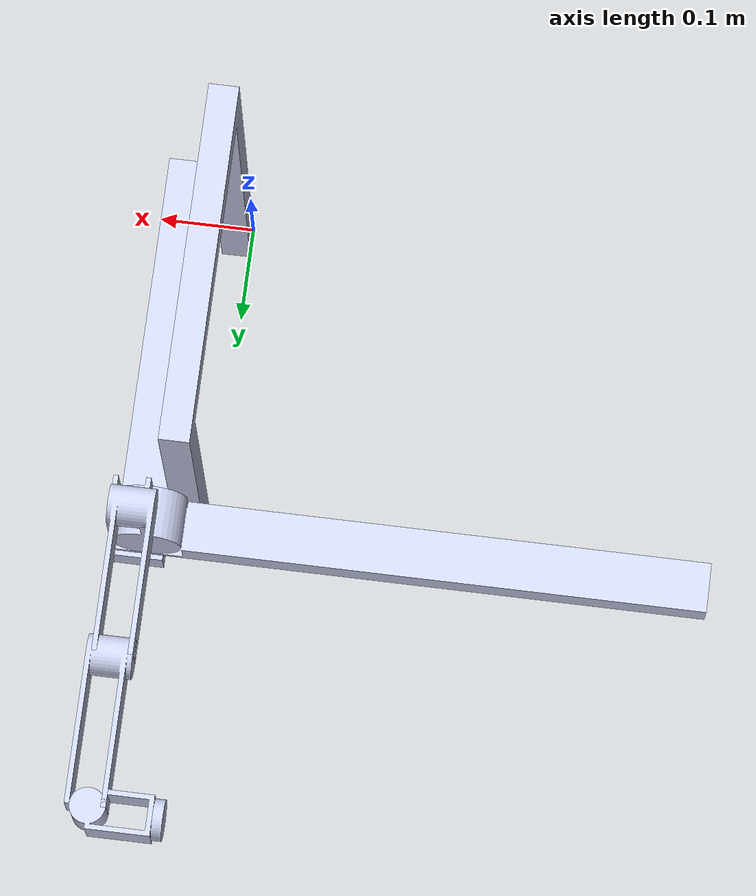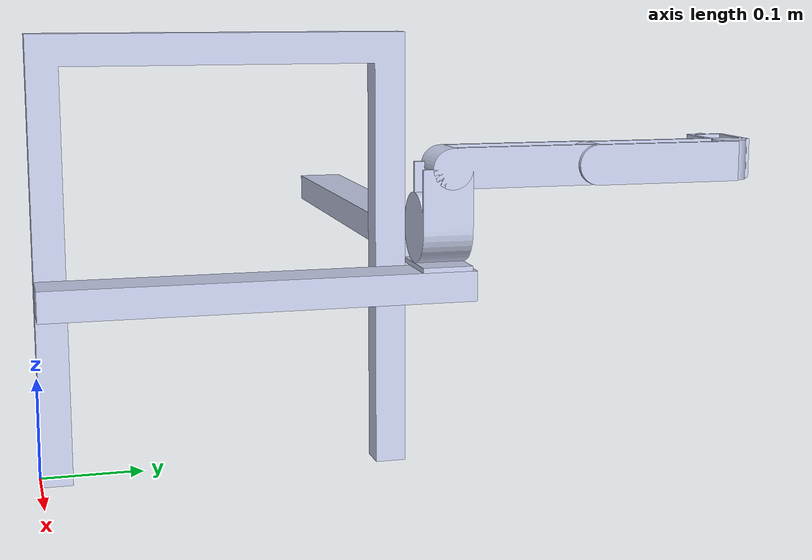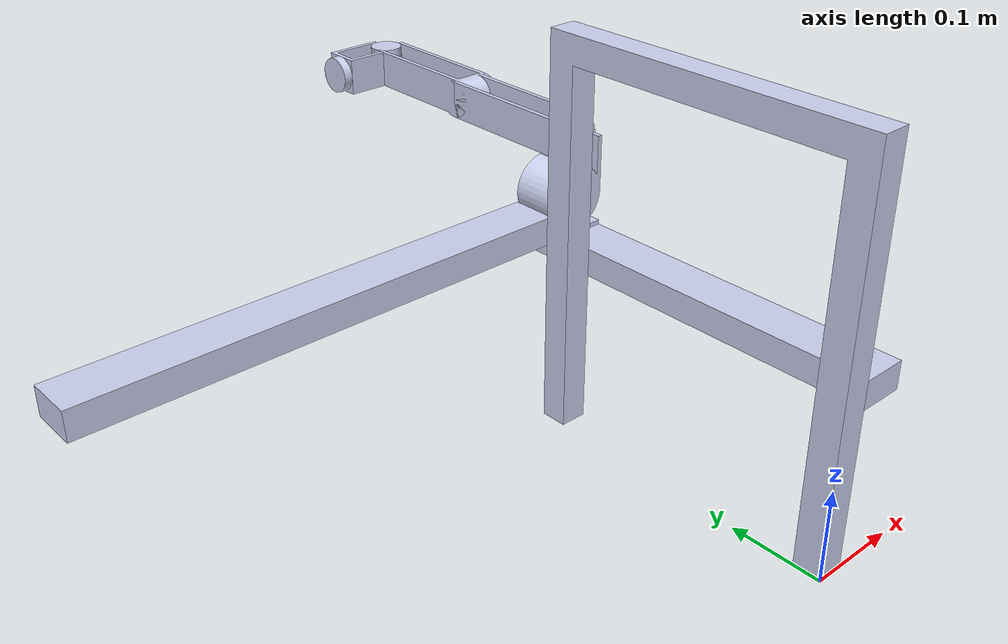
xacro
<?xml version="1.0"?>
<robot xmlns:xacro="http://www.ros.org/wiki/xacro" name="arm_0">
    <xacro:arg name="initial_positions_file" default="initial_positions.yaml" />

    <!-- Import arm_0 urdf file -->
    <xacro:include filename="$(find arm_0)/urdf/arm_0.urdf" />

    <!-- Import control_xacro -->
    <xacro:include filename="arm_0.ros2_control.xacro" />

    <xacro:arm_0_ros2_control name="FakeSystem" initial_positions_file="$(arg initial_positions_file)"/>

</robot>

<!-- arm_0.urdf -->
<robot
  name="arm_0">
  <link
    name="base_link">
    <inertial>
      <origin
        xyz="0.0150000000000001 0.18 0.266724137931034"
        rpy="0 0 0" />
      <mass
        value="1.044" />
      <inertia
        ixx="0.0131775"
        ixy="1.22548196841864E-20"
        ixz="3.6859680981316E-20"
        iyy="0.00970260000000001"
        iyz="-3.3156353969972E-17"
        izz="0.0036315" />
    </inertial>
    <visual>
      <origin
        xyz="0 0 0"
        rpy="0 0 0" />
      <geometry>
        <mesh
          filename="package://arm_0/meshes/base_link.STL" />
      </geometry>
      <material
        name="">
        <color
          rgba="0.792156862745098 0.819607843137255 0.933333333333333 1" />
      </material>
    </visual>
    <collision>
      <origin
        xyz="0 0 0"
        rpy="0 0 0" />
      <geometry>
        <mesh
          filename="package://arm_0/meshes/base_link.STL" />
      </geometry>
    </collision>
  </link>
  <link
    name="link1">
    <inertial>
      <origin
        xyz="-0.21 0.025 -0.0150000000000001"
        rpy="0 0 0" />
      <mass
        value="0.629999999999999" />
      <inertia
        ixx="0.0001785"
        ixy="1.21917699152479E-19"
        ixz="9.89491718219124E-20"
        iyy="0.00930824999999999"
        iyz="2.89515131245302E-19"
        izz="0.00939224999999999" />
    </inertial>
    <visual>
      <origin
        xyz="0 0 0"
        rpy="0 0 0" />
      <geometry>
        <mesh
          filename="package://arm_0/meshes/link1.STL" />
      </geometry>
      <material
        name="">
        <color
          rgba="0.792156862745098 0.819607843137255 0.933333333333333 1" />
      </material>
    </visual>
    <collision>
      <origin
        xyz="0 0 0"
        rpy="0 0 0" />
      <geometry>
        <mesh
          filename="package://arm_0/meshes/link1.STL" />
      </geometry>
    </collision>
  </link>
  <joint
    name="joint1"
    type="prismatic">
    <origin
      xyz="0.03 0 0.2"
      rpy="0 0 -1.5708" />
    <parent
      link="base_link" />
    <child
      link="link1" />
    <axis
      xyz="0 0 1" />
    <limit
      lower="0"
      upper="0.2"
      effort="0"
      velocity="0.2" />
  </joint>
  <link
    name="link2">
    <inertial>
      <origin
        xyz="0.0250000000000001 0.00972570532918204 -0.323526645768025"
        rpy="0 0 0" />
      <mass
        value="0.797500000000001" />
      <inertia
        ixx="0.0176416822916667"
        ixy="-1.24576770735757E-20"
        ixz="-4.23071074943213E-19"
        iyy="0.0177492916666667"
        iyz="1.2971848518932E-19"
        izz="0.000224682291666667" />
    </inertial>
    <visual>
      <origin
        xyz="0 0 0"
        rpy="0 0 0" />
      <geometry>
        <mesh
          filename="package://arm_0/meshes/link2.STL" />
      </geometry>
      <material
        name="">
        <color
          rgba="0.792156862745098 0.819607843137255 0.933333333333333 1" />
      </material>
    </visual>
    <collision>
      <origin
        xyz="0 0 0"
        rpy="0 0 0" />
      <geometry>
        <mesh
          filename="package://arm_0/meshes/link2.STL" />
      </geometry>
    </collision>
  </link>
  <joint
    name="joint2"
    type="prismatic">
    <origin
      xyz="-0.365 0.05 0.005"
      rpy="1.5708 0 -3.1416" />
    <parent
      link="link1" />
    <child
      link="link2" />
    <axis
      xyz="0 0 1" />
    <limit
      lower="0"
      upper="0.52"
      effort="0"
      velocity="0.2" />
  </joint>
  <link
    name="link3">
    <inertial>
      <origin
        xyz="-0.00383859208759457 -0.00226825896085331 0.0250000000000002"
        rpy="0 0 0" />
      <mass
        value="0.214922550032375" />
      <inertia
        ixx="0.00010375181220416"
        ixy="1.6447173030815E-20"
        ixz="1.55447019113076E-21"
        iyy="0.00010876743720416"
        iyz="-1.56795527780169E-20"
        izz="0.00012296818689483" />
    </inertial>
    <visual>
      <origin
        xyz="0 0 0"
        rpy="0 0 0" />
      <geometry>
        <mesh
          filename="package://arm_0/meshes/link3.STL" />
      </geometry>
      <material
        name="">
        <color
          rgba="0.792156862745098 0.819607843137255 0.933333333333333 1" />
      </material>
    </visual>
    <collision>
      <origin
        xyz="0 0 0"
        rpy="0 0 0" />
      <geometry>
        <mesh
          filename="package://arm_0/meshes/link3.STL" />
      </geometry>
    </collision>
  </link>
  <joint
    name="joint3"
    type="revolute">
    <origin
      xyz="0.00018539 0.035 -0.035"
      rpy="-1.5708 0 -1.5708" />
    <parent
      link="link2" />
    <child
      link="link3" />
    <axis
      xyz="0 0 -1" />
    <limit
      lower="0"
      upper="1.5708"
      effort="0"
      velocity="1.5708" />
  </joint>
  <link
    name="link4">
    <inertial>
      <origin
        xyz="0.0386104799506439 -3.88578058618805E-16 0.0237870159983397"
        rpy="0 0 0" />
      <mass
        value="0.116548667764616" />
      <inertia
        ixx="2.33224544617406E-05"
        ixy="-1.45109664472784E-21"
        ixz="1.09489071317013E-22"
        iyy="0.000127822454461741"
        iyz="1.49113949445848E-20"
        izz="0.000131809733552923" />
    </inertial>
    <visual>
      <origin
        xyz="0 0 0"
        rpy="0 0 0" />
      <geometry>
        <mesh
          filename="package://arm_0/meshes/link4.STL" />
      </geometry>
      <material
        name="">
        <color
          rgba="0.792156862745098 0.819607843137255 0.933333333333333 1" />
      </material>
    </visual>
    <collision>
      <origin
        xyz="0 0 0"
        rpy="0 0 0" />
      <geometry>
        <mesh
          filename="package://arm_0/meshes/link4.STL" />
      </geometry>
    </collision>
  </link>
  <joint
    name="joint4"
    type="revolute">
    <origin
      xyz="-0.06 -0.035 0.029815"
      rpy="-1.5708 -1.5708 0" />
    <parent
      link="link3" />
    <child
      link="link4" />
    <axis
      xyz="0 0 -1" />
    <limit
      lower="0"
      upper="3.1416"
      effort="0"
      velocity="1.5708" />
  </joint>
  <link
    name="link5">
    <inertial>
      <origin
        xyz="0.0386104799506441 -9.43689570931383E-16 0.021212984001646"
        rpy="0 0 0" />
      <mass
        value="0.116548667764616" />
      <inertia
        ixx="2.33224544617406E-05"
        ixy="2.54545996277801E-21"
        ixz="5.20103575419095E-22"
        iyy="0.00012782245446174"
        iyz="3.12321566304693E-20"
        izz="0.000131809733552923" />
    </inertial>
    <visual>
      <origin
        xyz="0 0 0"
        rpy="0 0 0" />
      <geometry>
        <mesh
          filename="package://arm_0/meshes/link5.STL" />
      </geometry>
      <material
        name="">
        <color
          rgba="0.792156862745098 0.819607843137255 0.933333333333333 1" />
      </material>
    </visual>
    <collision>
      <origin
        xyz="0 0 0"
        rpy="0 0 0" />
      <geometry>
        <mesh
          filename="package://arm_0/meshes/link5.STL" />
      </geometry>
    </collision>
  </link>
  <joint
    name="joint5"
    type="revolute">
    <origin
      xyz="0.15 0 0"
      rpy="0 0 0" />
    <parent
      link="link4" />
    <child
      link="link5" />
    <axis
      xyz="0 0 -1" />
    <limit
      lower="-2.7489"
      upper="2.7489"
      effort="0"
      velocity="2.3562" />
  </joint>
  <link
    name="link6">
    <inertial>
      <origin
        xyz="0.00210575365579668 0.0171468511972045 -0.0199999999999989"
        rpy="0 0 0" />
      <mass
        value="0.066484510006475" />
      <inertia
        ixx="1.64944049649007E-05"
        ixy="1.30230186917681E-20"
        ixz="4.75098114879039E-21"
        iyy="1.29194049649007E-05"
        iyz="2.84221956348369E-20"
        izz="1.16846072614081E-05" />
    </inertial>
    <visual>
      <origin
        xyz="0 0 0"
        rpy="0 0 0" />
      <geometry>
        <mesh
          filename="package://arm_0/meshes/link6.STL" />
      </geometry>
      <material
        name="">
        <color
          rgba="0.792156862745098 0.819607843137255 0.933333333333333 1" />
      </material>
    </visual>
    <collision>
      <origin
        xyz="0 0 0"
        rpy="0 0 0" />
      <geometry>
        <mesh
          filename="package://arm_0/meshes/link6.STL" />
      </geometry>
    </collision>
  </link>
  <joint
    name="joint6"
    type="revolute">
    <origin
      xyz="0.15 -0.02 0.0225"
      rpy="1.5708 0 0" />
    <parent
      link="link5" />
    <child
      link="link6" />
    <axis
      xyz="0 0 -1" />
    <limit
      lower="0"
      upper="1.5708"
      effort="0"
      velocity="1.5708" />
  </joint>
  <link
    name="link7">
    <inertial>
      <origin
        xyz="0 0 -0.005"
        rpy="0 0 0" />
      <mass
        value="0.0125663706143592" />
      <inertia
        ixx="1.36135681655558E-06"
        ixy="1.29779041798047E-37"
        ixz="-2.29588740395048E-39"
        iyy="1.36135681655558E-06"
        iyz="1.29410607315755E-22"
        izz="2.51327412287184E-06" />
    </inertial>
    <visual>
      <origin
        xyz="0 0 0"
        rpy="0 0 0" />
      <geometry>
        <mesh
          filename="package://arm_0/meshes/link7.STL" />
      </geometry>
      <material
        name="">
        <color
          rgba="0.792156862745098 0.819607843137255 0.933333333333333 1" />
      </material>
    </visual>
    <collision>
      <origin
        xyz="0 0 0"
        rpy="0 0 0" />
      <geometry>
        <mesh
          filename="package://arm_0/meshes/link7.STL" />
      </geometry>
    </collision>
  </link>
  <joint
    name="joint7"
    type="fixed">
    <origin
      xyz="0.0025 0.0725 -0.02"
      rpy="-1.5708 0 0" />
    <parent
      link="link6" />
    <child
      link="link7" />
    <axis
      xyz="0 0 1" />
  </joint>
</robot>
